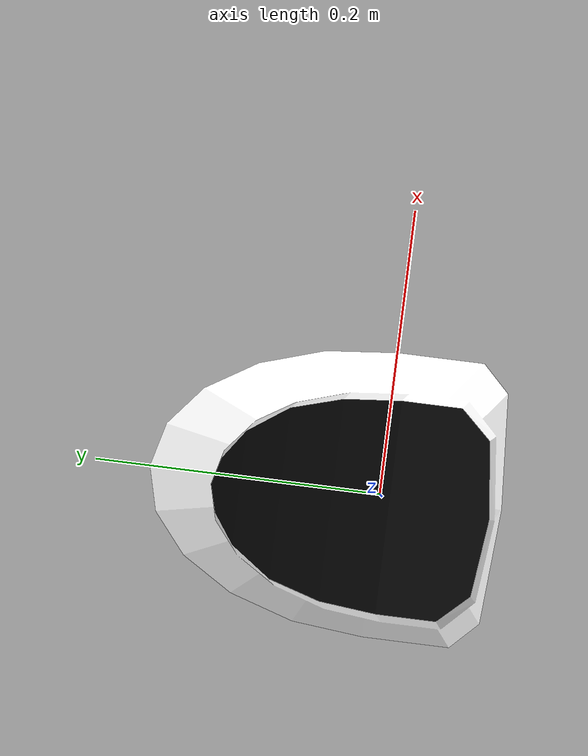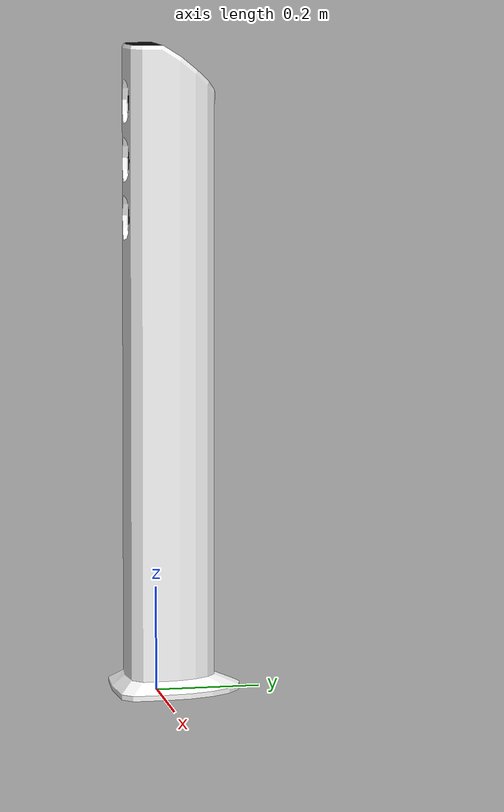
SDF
<?xml version='1.0'?>
<sdf version="1.4">
	<model name="speaker">
		<static>1</static>
		<link name="link">
			<visual name="mesh">
				<geometry>
					<mesh>
						<uri>model://meshes/speaker.dae</uri>
					</mesh>
				</geometry>
			</visual>
			<collision name="collider">
				<pose>0 0 0 0 0 0</pose>
				<geometry>
					<mesh>
						<uri>model://meshes/speaker_collision.stl</uri>
					</mesh>
				</geometry>
			</collision>
		</link>
	</model>
</sdf>
